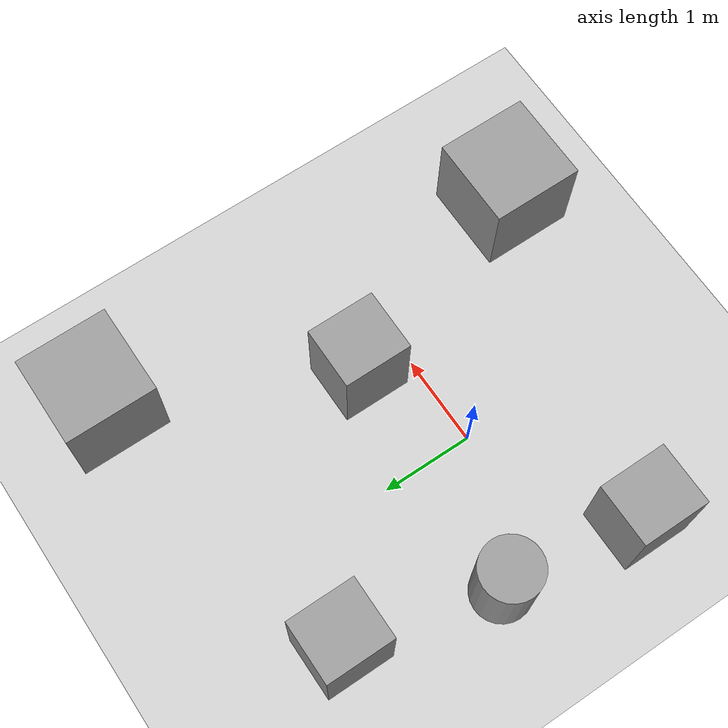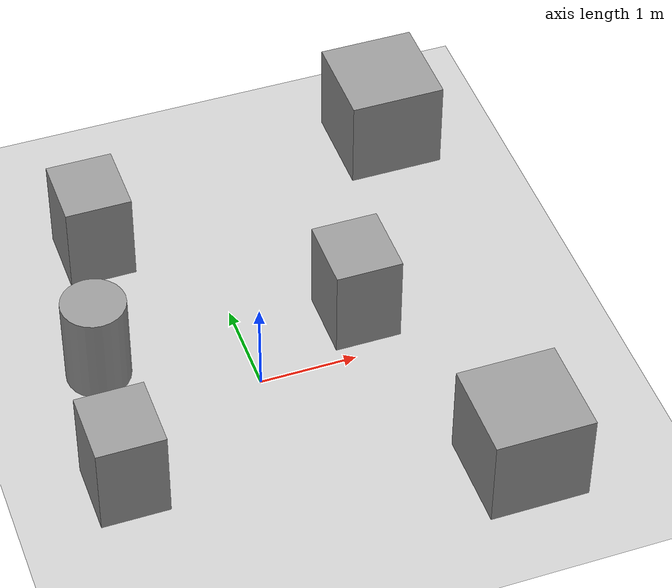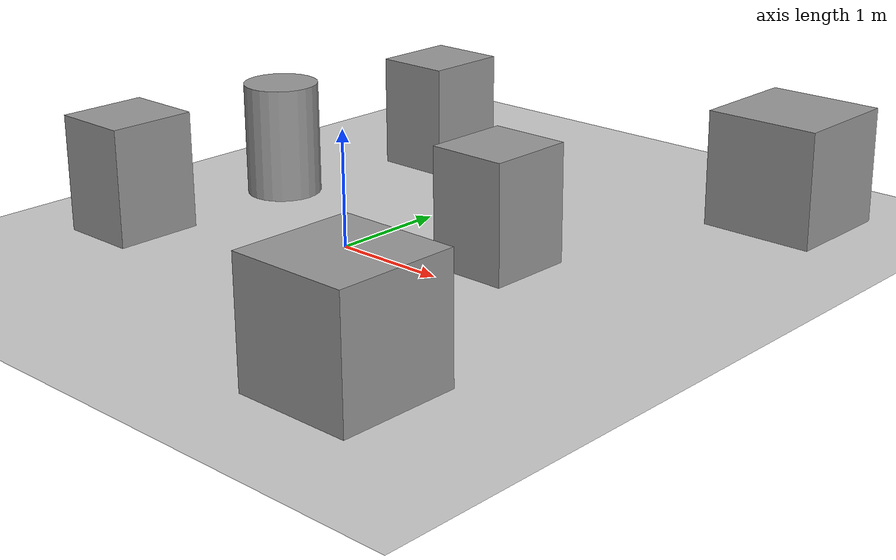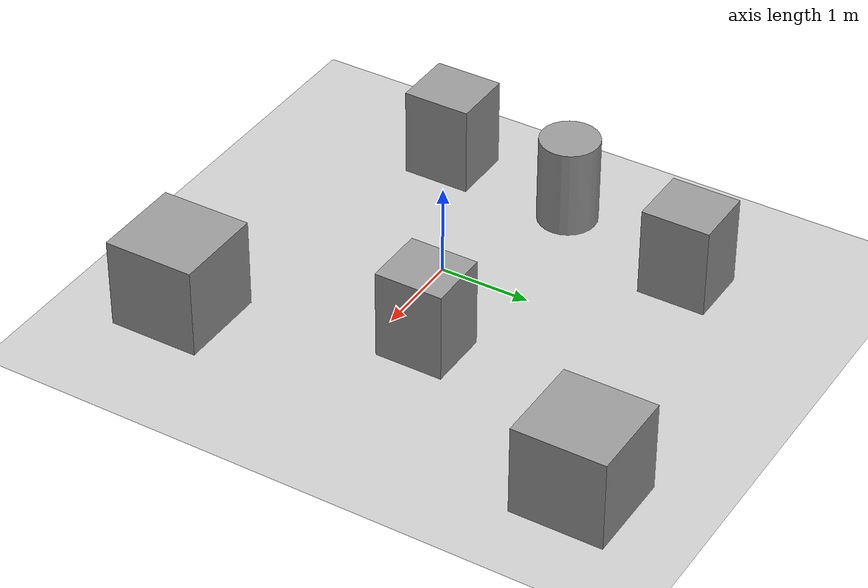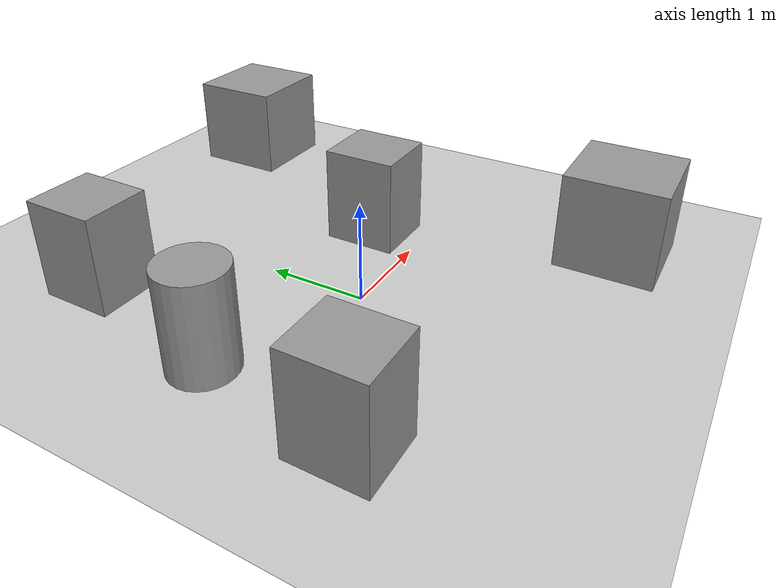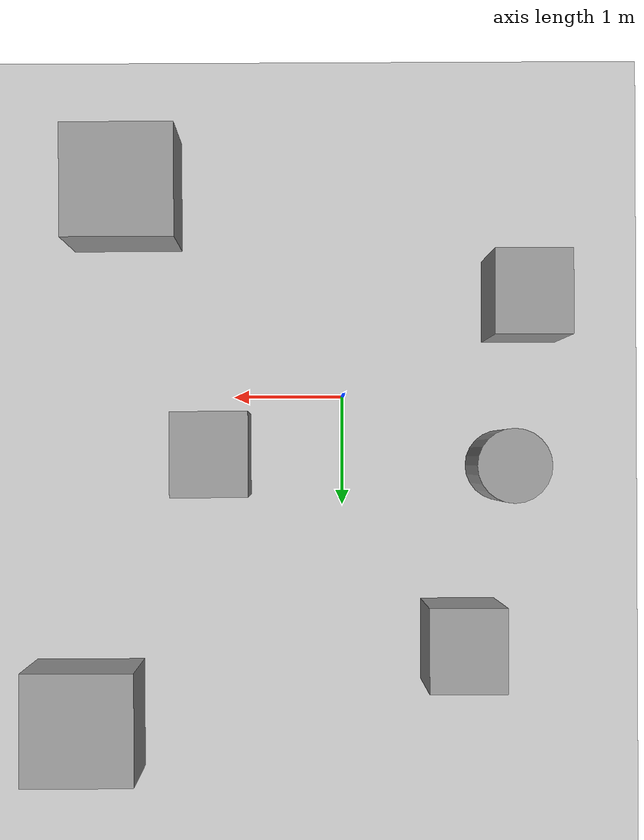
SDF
<sdf version="1.6">
 <world name="default">
  <light name="sun" type="directional">
   <pose>0 0 10 0 -0 0</pose>
   <diffuse>0.8 0.8 0.8 1</diffuse>
   <specular>0.2 0.2 0.2 1</specular>
   <attenuation>
    <range>1000</range>
    <constant>0.9</constant>
    <linear>0.01</linear>
    <quadratic>0.001</quadratic>
   </attenuation>
   <direction>-0.5 0.1 -0.9</direction>
  </light>
  <model name="ground_plane">
   <static>1</static>
   <link name="link">
    <collision name="collision">
     <geometry><plane><normal>0 0 1</normal><size>100 100</size></plane></geometry>
     <surface><friction><ode><mu>100</mu><mu2>50</mu2></ode></friction></surface>
    </collision>
    <visual name="visual">
     <cast_shadows>0</cast_shadows>
     <geometry><plane><normal>0 0 1</normal><size>100 100</size></plane></geometry>
     <material>
      <script><uri>file://media/materials/scripts/gazebo.material</uri><name>Gazebo/Grey</name></script>
     </material>
    </visual>
   </link>
  </model>
  <gravity>0 0 -9.8</gravity>
  <magnetic_field>6e-06 2.3e-05 -4.2e-05</magnetic_field>
  <atmosphere type="adiabatic"/>
  <physics name="default_physics" default="0" type="ode">
   <max_step_size>0.001</max_step_size>
   <real_time_factor>1</real_time_factor>
   <real_time_update_rate>1000</real_time_update_rate>
  </physics>
  <scene><ambient>0.4 0.4 0.4 1</ambient><background>0.7 0.7 0.7 1</background><shadows>1</shadows></scene>
  <spherical_coordinates>
   <surface_model>EARTH_WGS84</surface_model>
   <latitude_deg>0</latitude_deg>
   <longitude_deg>0</longitude_deg>
   <elevation>0</elevation>
   <heading_deg>0</heading_deg>
  </spherical_coordinates>
  <model name="unit_box">
   <pose>-1.64874 -0.879038 0.499995 9e-06 4e-06 -0.000777</pose>
   <link name="link">
    <inertial>
     <mass>1</mass>
     <inertia>
      <ixx>0.166667</ixx>
      <ixy>0</ixy>
      <ixz>0</ixz>
      <iyy>0.166667</iyy>
      <iyz>0</iyz>
      <izz>0.166667</izz>
     </inertia>
    </inertial>
    <collision name="collision"><geometry><box><size>0.684734 0.751704 1</size></box></geometry></collision>
    <visual name="visual">
     <geometry><box><size>0.684734 0.751704 1</size></box></geometry>
     <material>
      <script><name>Gazebo/Grey</name><uri>file://media/materials/scripts/gazebo.material</uri></script>
     </material>
    </visual>
   </link>
  </model>
  <model name="unit_box_clone">
   <pose>-1.06496 2.25593 0.5 0 0 -6.2e-05</pose>
   <link name="link">
    <inertial>
     <mass>1</mass>
     <inertia>
      <ixx>0.166667</ixx>
      <ixy>0</ixy>
      <ixz>0</ixz>
      <iyy>0.166667</iyy>
      <iyz>0</iyz>
      <izz>0.166667</izz>
     </inertia>
    </inertial>
    <collision name="collision"><geometry><box><size>0.684734 0.751704 1</size></box></geometry></collision>
    <visual name="visual">
     <geometry><box><size>0.684734 0.751704 1</size></box></geometry>
     <material>
      <script><name>Gazebo/Grey</name><uri>file://media/materials/scripts/gazebo.material</uri></script>
     </material>
    </visual>
   </link>
  </model>
  <model name="unit_box_clone_0">
   <pose>1.19174 0.532102 0.499995 9e-06 4e-06 -0.000692</pose>
   <link name="link">
    <inertial>
     <mass>1</mass>
     <inertia>
      <ixx>0.166667</ixx>
      <ixy>0</ixy>
      <ixz>0</ixz>
      <iyy>0.166667</iyy>
      <iyz>0</iyz>
      <izz>0.166667</izz>
     </inertia>
    </inertial>
    <collision name="collision"><geometry><box><size>0.684734 0.751704 1</size></box></geometry></collision>
    <visual name="visual">
     <geometry><box><size>0.684734 0.751704 1</size></box></geometry>
     <material>
      <script><name>Gazebo/Grey</name><uri>file://media/materials/scripts/gazebo.material</uri></script>
     </material>
    </visual>
   </link>
  </model>
  <model name="unit_box_0">
   <pose>1.985 -1.86752 0.499995 0 1e-05 0</pose>
   <link name="link">
    <inertial>
     <mass>1</mass>
     <inertia>
      <ixx>0.166667</ixx>
      <ixy>0</ixy>
      <ixz>0</ixz>
      <iyy>0.166667</iyy>
      <iyz>0</iyz>
      <izz>0.166667</izz>
     </inertia>
    </inertial>
    <collision name="collision"><geometry><box><size>1 1 1</size></box></geometry></collision>
    <visual name="visual">
     <geometry><box><size>1 1 1</size></box></geometry>
     <material>
      <script><name>Gazebo/Grey</name><uri>file://media/materials/scripts/gazebo.material</uri></script>
     </material>
    </visual>
   </link>
  </model>
  <model name="unit_box_1">
   <pose>2.35205 2.93411 0.499995 -1e-05 -0 -0</pose>
   <link name="link">
    <inertial>
     <mass>1</mass>
     <inertia>
      <ixx>0.166667</ixx>
      <ixy>0</ixy>
      <ixz>0</ixz>
      <iyy>0.166667</iyy>
      <iyz>0</iyz>
      <izz>0.166667</izz>
     </inertia>
    </inertial>
    <collision name="collision"><geometry><box><size>1 1 1</size></box></geometry></collision>
    <visual name="visual">
     <geometry><box><size>1 1 1</size></box></geometry>
     <material>
      <script><name>Gazebo/Grey</name><uri>file://media/materials/scripts/gazebo.material</uri></script>
     </material>
    </visual>
   </link>
  </model>
  <model name="unit_cylinder">
   <pose>-1.47401 0.64244 0.499994 -3e-06 3e-06 0</pose>
   <link name="link">
    <inertial>
     <mass>1</mass>
     <inertia><ixx>0.145833</ixx><ixy>0</ixy><ixz>0</ixz><iyy>0.145833</iyy><iyz>0</iyz><izz>0.125</izz></inertia>
    </inertial>
    <collision name="collision">
     <geometry><cylinder><radius>0.327981</radius><length>1</length></cylinder></geometry>
    </collision>
    <visual name="visual">
     <geometry><cylinder><radius>0.327981</radius><length>1</length></cylinder></geometry>
     <material>
      <script><name>Gazebo/Grey</name><uri>file://media/materials/scripts/gazebo.material</uri></script>
     </material>
    </visual>
   </link>
  </model>
 </world>
</sdf>
